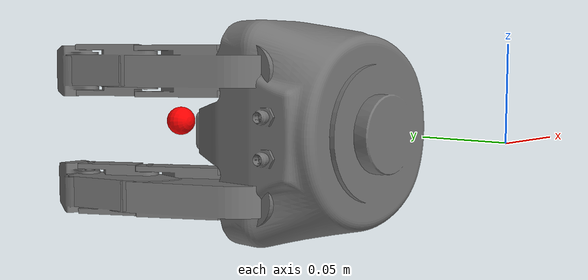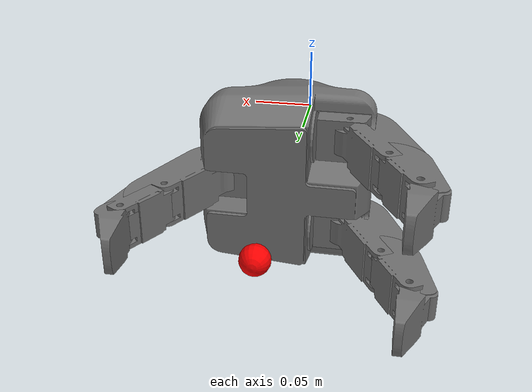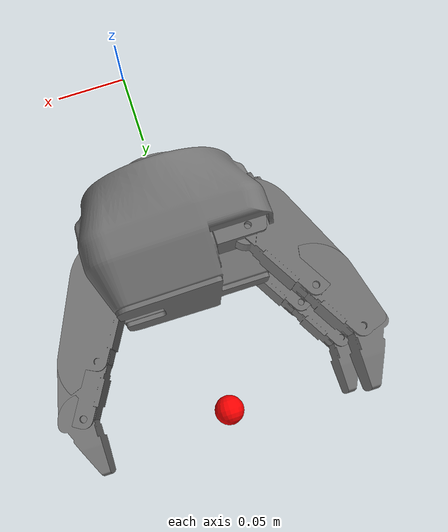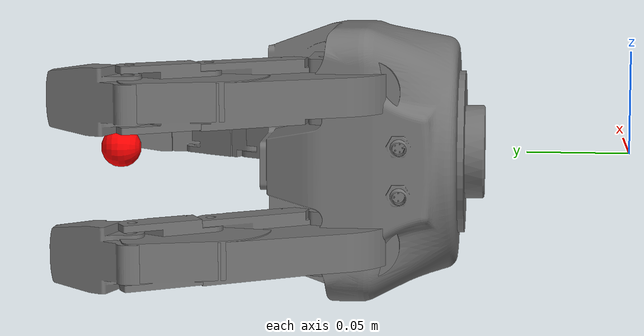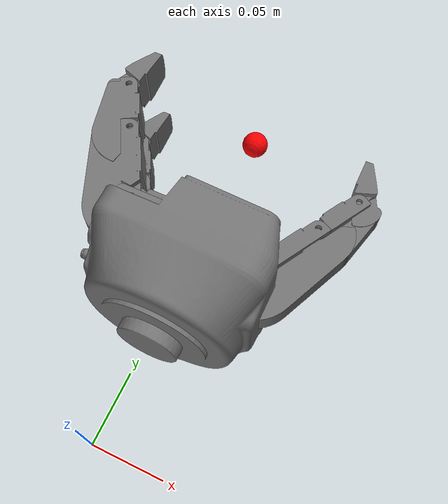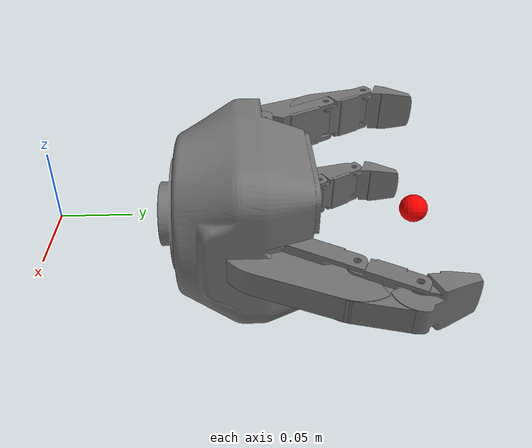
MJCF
<!--Link  MuJoCo modeling: http://www.mujoco.org/book/modeling.html-->

<mujoco model="3fgripper">
    <compiler angle="radian"
              inertiafromgeom="true"
              texturedir="textures/"
              meshdir="mesh/visual/"/>
    <size njmax="600" nconmax="150" nstack="300000"/>

    <default>
        <site rgba="0.8 0.6 0.7 0.3" type="ellipsoid" group="3"/>
        <geom contype='1' conaffinity='1' condim='4'  margin="1e-3" solref=".01 1" solimp=".99 .99 .01" />
        <joint armature="0.01" damping=".1"/>
        <default class="UR5">
            <joint damping='65'/>
        </default>
        <default class="UR5e">
            <joint damping='45'/>
        </default>
        <default class="GRIPPER">
            <joint damping='5'/>
        </default>
    </default>

    <visual>
        <map fogstart="3" fogend="5" znear="0.05"/>
        <quality shadowsize="2048"/>
        <scale framelength="0.1"
               framewidth="0.005"
               contactwidth="0.1"
               contactheight="0.005"
               forcewidth="0.01"
               />
    </visual>

    <!--Assets-->
    <asset>
        <mesh name="gripperpalm"    file="mesh/visual/palm.STL"     />
        <!-- gripper finger -->
        <mesh name="link_0"         file="mesh/visual/link_0.STL"   />
        <mesh name="link_1"         file="mesh/visual/link_1.STL"   />
        <mesh name="link_2"         file="mesh/visual/link_2.STL"   />
        <mesh name="link_3"         file="mesh/visual/link_3.STL"   />
        <!--Textures-->
        <texture name="ur5_tex"     type="2d"       builtin="flat" height="32" width="32" rgb1="0.45 0.45 0.45" />
        <texture name="gripper_tex" type="2d"       builtin="flat" height="32" width="32" rgb1="0.45 0.45 0.45" rgb2="0 0 0"/>
        <texture name="bench_tex"   type="2d"       builtin="flat" height="32" width="32" rgb1="0.7 0.7 0.7" />
        <texture name="sky_tex"     type="skybox"   builtin="gradient" width="100" height="100" rgb1="1 1 1" rgb2="0.3 0.3 0.8" />
        <texture name="texgeom"     type="cube"     builtin="flat" mark="cross" width="127" height="1278" rgb1="0.8 0.6 0.4" rgb2="0.8 0.6 0.4" markrgb="1 1 1" random="0.01" />
        <texture name="wood"        type="cube"     file="textures/wood2.png"/>
        <texture name="metal"        type="cube"     file="textures/metal2.png"/>
        <!--Materials-->
        <material name="ur5_mat"        texture="ur5_tex"   shininess="0.9" specular="0.75" reflectance="0.3"/>
        <material name="gripper_mat"    texture="gripper_tex"   shininess="0.9" specular="0.75" reflectance="0.4"/>
        <material name='geom'           texture="texgeom"   texuniform="true" />
        <material name="bench_mat"      texture="metal"   shininess="0.1" specular="0.5" reflectance="0.2"/>
        <material name="tablecube"      texture="wood" rgba=".8 .8 .8 1"/>

        <material name="table_mat" specular="0" shininess="0.5" reflectance="0" rgba="0.93 0.93 0.93 1"></material>
        <material name="block_mat" specular="0" shininess="0.5" reflectance="0" rgba="0.2 0.2 0.2 1"></material>
        <material name="puck_mat" specular="0" shininess="0.5" reflectance="0" rgba="0.2 0.2 0.2 1"></material>

    </asset>

    <!--Contacts-->
    <contact>
        <exclude body1="gripperpalm" body2="gripperfinger_1_link_1"/>
		<exclude body1="gripperpalm" body2="gripperfinger_2_link_1"/>
		<exclude body1="gripperpalm" body2="gripperfinger_middle_link_1"/>
    </contact>

    <!--MODEL DESCRIPTION-->
    <worldbody>
        <!--GRIPPER-->
        <body name="3f_base" pos="0 0.0823 0" quat="0.707107 -0.707107 0 0" >
            <joint name="3f" type="free" />
             <body name="tcp" pos=" 0  0 0.17" quat="0.707107 0 0 0.707107">
                                                <geom type="sphere" size="0.01 0.01 0.01" rgba="1 0 0 1"  contype="0" conaffinity="0"/>
                                                <!-- contype="0"：表示该 geom 不会与其他物体发生碰撞。
                                                conaffinity="0"：表示该 geom 不属于任何碰撞组。 -->
             </body>

            <inertial pos="0 0.0823 0" quat="0.707107 -0.707107 0 0" mass="0" diaginertia="0 0 0" />
            <body name="gripperpalm" pos="0 0 0.0423" quat="0.707107 0.707107 0 0">
                <site name="gripperpalm" pos="0 0.05 0" size="0.035 0.0055 0.035"/>
                <inertial pos="0 0 0" mass="1.3" diaginertia="0.0035 0.0035 0.0035" />
                <geom name="gripperpalm" type="mesh"  mesh="gripperpalm" material="gripper_mat"/>
                <!--FINGER 1-->
                <body name="gripperfinger_1_link_0" pos="-0.0455 0.0214 0.036" quat="-2.59838e-06 0.706825 0.707388 2.59631e-06">
                    <inertial pos="-0.01 0 0" quat="0.5 0.5 0.5 0.5" mass="0.1" diaginertia="2.5e-05 2.5e-05 1.8e-05" />
                    <joint name="gripperpalm_finger_1_joint" class="GRIPPER" pos="0 0 0" axis="0 1 0" limited="true" range="-0.2967 0.2967" />
                    <geom name="f1_l0" type="mesh" material="gripper_mat" mesh="link_0" />
                    <body name="gripperfinger_1_link_1" pos="0 0 0" quat="0.501642 0 0 -0.865075">
                        <site name="gripperfinger_1_polp_1" pos="-0.005 0.035 0" size=".006 .014 .014"/>
                        <inertial pos="0.00053 0.03218 0" quat="0.00544471 0.00542787 0.707078 0.707093" mass="0.047" diaginertia="6.43594e-05 6.06192e-05 4.97928e-06" />
                        <joint name="gripperfinger_1_joint_1" class="GRIPPER" pos="0 0 0" axis="0 0 1" limited="true" range="0 1.2217" />
                        <geom name="f1_l1" pos="0 0.05717 0" quat="0.707105 0 0 0.707108" type="mesh" material="gripper_mat" mesh="link_1" />
                        <body name="gripperfinger_1_link_2" pos="0 0.05715 0">
                            <site name="gripperfinger_1_polp_2" pos="-0.006 0.02 0" size=".006 .014 .014"/>
                            <inertial pos="0.00048 0.02167 0.00018" quat="0.00523005 0.00665272 0.709882 0.70427" mass="0.03284" diaginertia="2.24866e-05 1.98645e-05 3.47368e-06" />
                            <joint name="gripperfinger_1_joint_2" class="GRIPPER" pos="0 0 0" axis="0 0 1" limited="true" range="0 1.5708" />
                            <geom name="f1_l2" pos="0 0.0381 0.0075" quat="0.707105 0 0 0.707108" type="mesh" material="gripper_mat" mesh="link_2" />
                            <body name="gripperfinger_1_link_3" pos="0 0.039 0" quat="0.501642 0 0 0.865075">
                                <site name="gripperfinger_1_polp_3" pos="0.025 0.006 0" size=".014 .006 .014"/>
                                <inertial pos="0.01626 0.00049 0.0002" quat="0.520969 0.517877 0.481643 0.477927" mass="0.03354" diaginertia="1.43512e-05 1.26412e-05 2.98016e-06" />
                                <joint name="gripperfinger_1_joint_3" class="GRIPPER" pos="0 0 0" axis="0 0 1" limited="true" range="-0.6632 1.0471" />
                                <geom name="f1_l3" type="mesh" material="gripper_mat" mesh="link_3" />
                            </body>
                        </body>
                    </body>
                </body>
                <!--FINGER 2-->
                <body name="gripperfinger_2_link_0" pos="-0.0455 0.0214 -0.036" quat="-2.59838e-06 0.706825 0.707388 2.59631e-06">
                    <inertial pos="-0.01 0 0" quat="0.5 0.5 0.5 0.5" mass="0.1" diaginertia="2.5e-05 2.5e-05 1.8e-05" />
                    <joint name="gripperpalm_finger_2_joint" class="GRIPPER" pos="0 0 0" axis="0 1 0" limited="true" range="-0.2967 0.2967" />
                    <geom name="f2_l0" type="mesh" material="gripper_mat" mesh="link_0" />
                    <body name="gripperfinger_2_link_1" pos="0 0 0" quat="0.501642 0 0 -0.865075">
                        <site name="gripperfinger_2_polp_1" pos="-0.005 0.035 0" size=".006 .014 .014"/>
                        <inertial pos="0.00053 0.03218 0" quat="0.00544471 0.00542787 0.707078 0.707093" mass="0.047" diaginertia="6.43594e-05 6.06192e-05 4.97928e-06" />
                        <joint name="gripperfinger_2_joint_1" class="GRIPPER" pos="0 0 0" axis="0 0 1" limited="true" range="0 1.2217" />
                        <geom name="f2_l1" pos="0 0.05717 0" quat="0.707105 0 0 0.707108" type="mesh" material="gripper_mat" mesh="link_1" />
                        <body name="gripperfinger_2_link_2" pos="0 0.05715 0">
                            <site name="gripperfinger_2_polp_2" pos="-0.006 0.02 0" size=".006 .014 .014"/>
                            <inertial pos="0.00048 0.02167 0.00018" quat="0.00523005 0.00665272 0.709882 0.70427" mass="0.03284" diaginertia="2.24866e-05 1.98645e-05 3.47368e-06" />
                            <joint name="gripperfinger_2_joint_2" class="GRIPPER" pos="0 0 0" axis="0 0 1" limited="true" range="0 1.5708" />
                            <geom name="f2_l2" pos="0 0.0381 0.0075" quat="0.707105 0 0 0.707108" type="mesh" material="gripper_mat" mesh="link_2" />
                            <body name="gripperfinger_2_link_3" pos="0 0.039 0" quat="0.501642 0 0 0.865075">
                                <site name="gripperfinger_2_polp_3" pos="0.025 0.006 0" size=".014 .006 .014"/>
                                <inertial pos="0.01626 0.00049 0.0002" quat="0.520969 0.517877 0.481643 0.477927" mass="0.03354" diaginertia="1.43512e-05 1.26412e-05 2.98016e-06" />
                                <joint name="gripperfinger_2_joint_3" class="GRIPPER" pos="0 0 0" axis="0 0 1" limited="true" range="-0.6632 1.0471" />
                                <geom name="f2_l3" type="mesh" material="gripper_mat" mesh="link_3" />
                            </body>
                        </body>
                    </body>
                </body>
                <!--MIDDLE FINGER-->
                <body name="gripperfinger_middle_link_0" pos="0.0455 0.0214 0" quat="0.707388 0 0 0.706825">
                    <inertial pos="-0.01 0 0" quat="0.5 0.5 0.5 0.5" mass="0.1" diaginertia="2.5e-05 2.5e-05 1.8e-05" />
                    <joint name="gripperpalm_finger_middle_joint" class="GRIPPER" pos="0 0 0" axis="0 1 0"  limited="true" range="-1e-3 1e-3"/> <!--RANGE CAMBIATO (In realtà aggiunto, non c'era ??) A MANO DA ME PER LA STABILITA DEL POLLICE-->
                    <geom name="f3_l0" type="mesh" material="gripper_mat" mesh="link_0" />
                    <body name="gripperfinger_middle_link_1" pos="0 0 0" quat="0.501642 0 0 -0.865075">
                        <site name="gripperfinger_middle_polp_1" pos="-0.005 0.035 0" size=".006 .014 .014"/>
                        <inertial pos="0.00053 0.03218 0" quat="0.00544471 0.00542787 0.707078 0.707093" mass="0.047" diaginertia="6.43594e-05 6.06192e-05 4.97928e-06" />
                        <joint name="gripperfinger_middle_joint_1" class="GRIPPER" pos="0 0 0" axis="0 0 1" limited="true" range="0 1.2217" />
                        <geom name="f3_l1" pos="0 0.05717 0" quat="0.707105 0 0 0.707108" type="mesh" material="gripper_mat" mesh="link_1" />
                        <body name="gripperfinger_middle_link_2" pos="0 0.05715 0">
                            <site name="gripperfinger_middle_polp_2" pos="-0.006 0.02 0" size=".006 .014 .014"/>
                            <inertial pos="0.00048 0.02167 0.00018" quat="0.00523005 0.00665272 0.709882 0.70427" mass="0.03284" diaginertia="2.24866e-05 1.98645e-05 3.47368e-06" />
                            <joint name="gripperfinger_middle_joint_2" class="GRIPPER" pos="0 0 0" axis="0 0 1" limited="true" range="0 1.5708" />
                            <geom name="f3_l2" pos="0 0.0381 0.0075" quat="0.707105 0 0 0.707108" type="mesh" material="gripper_mat" mesh="link_2" />
                            <body name="gripperfinger_middle_link_3" pos="0 0.039 0" quat="0.501642 0 0 0.865075">
                                <site name="gripperfinger_middle_polp_3" pos="0.025 0.006 0" size=".014 .006 .014"/>
                                <inertial pos="0.01626 0.00049 0.0002" quat="0.520969 0.517877 0.481643 0.477927" mass="0.03354" diaginertia="1.43512e-05 1.26412e-05 2.98016e-06" />
                                <joint name="gripperfinger_middle_joint_3" class="GRIPPER" pos="0 0 0" axis="0 0 1" limited="true" range="-0.6632 1.0471" />
                                <geom name="f3_l3" type="mesh" material="gripper_mat" mesh="link_3" />
                            </body>
                        </body>
                    </body>
                </body>
            </body>
        </body>
    </worldbody>

    <tendon>
		<!--Middlefinger tendons-->
		<fixed name="middle12_cpl" range="0 1">
			<joint joint="gripperfinger_middle_joint_1"  coef="1"/>
			<joint joint="gripperfinger_middle_joint_2"  coef="-1.5"/>
		</fixed>
		<fixed name="middle23_cpl" range="0 1">
			<joint joint="gripperfinger_middle_joint_2"  coef="1"/>
			<joint joint="gripperfinger_middle_joint_3"  coef="-3.5"/>
		</fixed>

		<!--finger2 tendons-->
        <fixed name="finger2_12_cpl" range="0 1">
			<joint joint="gripperfinger_2_joint_1"  coef="1"/>
			<joint joint="gripperfinger_2_joint_2"  coef="-1.5"/>
		</fixed>
		<fixed name="finger2_23_cpl" range="0 1">
			<joint joint="gripperfinger_2_joint_2"  coef="1"/>
			<joint joint="gripperfinger_2_joint_3"  coef="-3.5"/>
		</fixed>

		<!--Finger1 tendons-->
        <fixed name="finger1_12_cpl" range="0 1">
			<joint joint="gripperfinger_1_joint_1"  coef="1"/>
			<joint joint="gripperfinger_1_joint_2"  coef="-1.5"/>
		</fixed>
		<fixed name="finger1_23_cpl" range="0 1">
			<joint joint="gripperfinger_1_joint_2"  coef="1"/>
			<joint joint="gripperfinger_1_joint_3"  coef="-3.5"/>
		</fixed>
	</tendon>

    <equality>
		<!-- GRIPPER Couplings -->
		<tendon name="middle12_cpl" 	tendon1="middle12_cpl"/>
		<tendon name="middle23_cpl" 	tendon1="middle23_cpl"/>

        <tendon name="finger2_12_cpl" 	tendon1="finger2_12_cpl"/>
		<tendon name="finger2_23_cpl" 	tendon1="finger2_23_cpl"/>

        <tendon name="finger1_12_cpl" 	tendon1="finger1_12_cpl"/>
		<tendon name="finger1_23_cpl" 	tendon1="finger1_23_cpl"/>

		<!-- SCISSOR Coupling -->
		<joint name="finger_12_scissor" joint1="gripperpalm_finger_2_joint" joint2="gripperpalm_finger_1_joint" polycoef="0 -1 0 0 0"/>
	</equality>

    <!--ACTUATORS-->
    <actuator>

        <!--Gripper-->
        <!-- position control mode -->
        <position name='finger_1' ctrllimited="true" kp="20" joint='gripperfinger_1_joint_1' ctrlrange='0 1.2217'/>
        <position name='finger_2' ctrllimited="true" kp="20" joint='gripperfinger_2_joint_1' ctrlrange='0 1.2217'/>
        <position name='middle_finger'  ctrllimited="true" kp="20" joint='gripperfinger_middle_joint_1' ctrlrange='0 1.2217'/>
        <position name='finger_scissor' ctrllimited="true" kp="20" joint='gripperpalm_finger_1_joint' ctrlrange="-0.2967 0.2967"/>

        <!-- force control mode -->

        <!-- gripper joint -->

    </actuator>

    <sensor>
        <touch name="gripperpalm_frc" 		site="gripperpalm"/>

        <touch name="finger_1_polp_1_frc"	site="gripperfinger_1_polp_1"/>
    	<touch name="finger_1_polp_2_frc" 	site="gripperfinger_1_polp_2"/>
        <touch name="finger_1_polp_3_frc" 	site="gripperfinger_1_polp_3"/>

        <touch name="finger_2_link_1_frc" 	site="gripperfinger_2_polp_1"/>
        <touch name="finger_2_link_2_frc" 	site="gripperfinger_2_polp_2"/>
        <touch name="finger_2_link_3_frc" 	site="gripperfinger_2_polp_3"/>

        <touch name="finger_middle_link_1_frc" 	site="gripperfinger_middle_polp_1"/>
        <touch name="finger_middle_link_2_frc" 	site="gripperfinger_middle_polp_2"/>
        <touch name="finger_middle_link_3_frc" 	site="gripperfinger_middle_polp_3"/>
    </sensor>

</mujoco>
